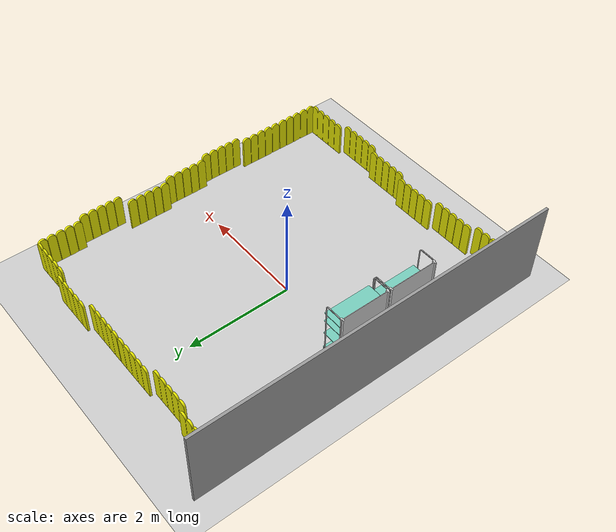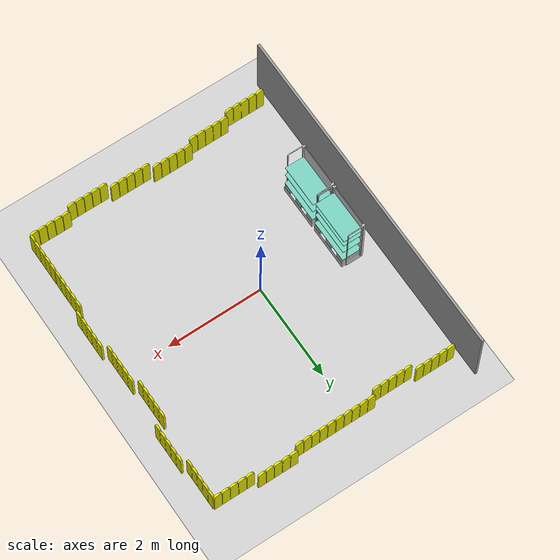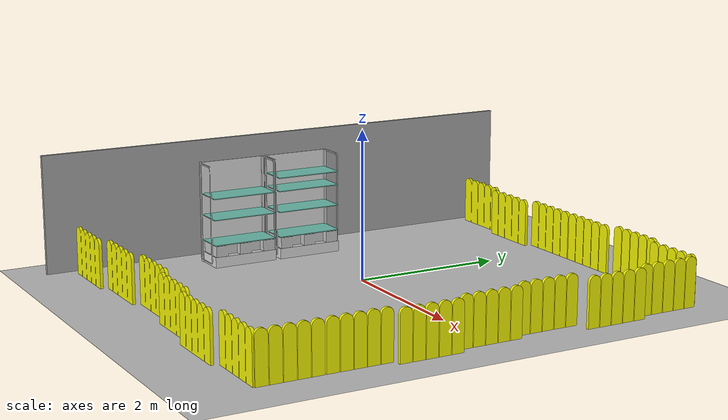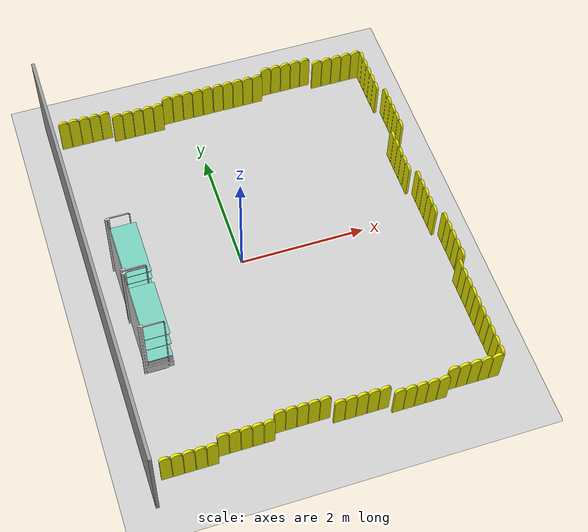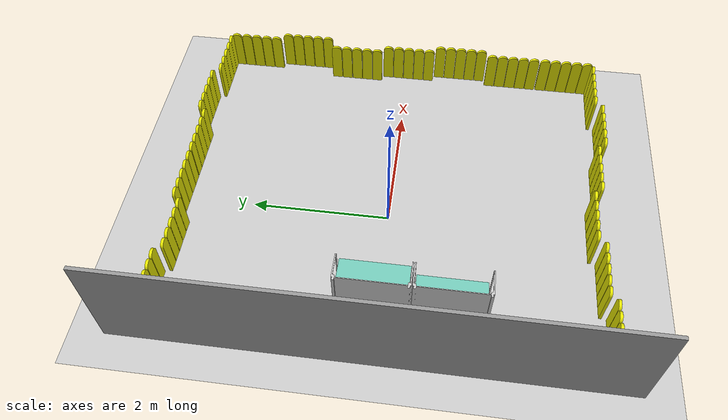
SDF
<?xml version="1.0" ?>
<sdf version="1.4">
  <!-- We use a custom world for the rrbot so that the camera angle is launched correctly -->

  <world name="default">
    <include>
      <uri>model://ground_plane</uri>
    </include>

    <!-- Global light source -->
    <include>
      <uri>model://sun</uri>
    </include>

    <!-- Focus camera on tall pendulum -->
    <gui fullscreen='0'>
      <camera name='user_camera'>
        <pose>7.1 -3.8 5.2 0 0.59 2.7</pose>
        <view_controller>orbit</view_controller>
      </camera>
    </gui>

    <include>
      <pose frame=''>-1.9 -0.97 0  0 0 0</pose>
      <uri>model://fcsc_shelf</uri>
    </include>

    <include>
      <pose frame=''>-1.9 0 0   0 0 0</pose>
      <uri>model://fcsc_shelf2</uri>
    </include>

    <!-- side fences -->
    <include>
      <pose frame=''>-1.72 -3.1 0  0 0 1.570796326795</pose>
      <uri>model://puppy_fence</uri>
    </include>
    <include>
      <pose frame=''>-0.86 -3.0 0  0 0 1.570796326795</pose>
      <uri>model://puppy_fence</uri>
    </include>
    <include>
      <pose frame=''>0 -2.9 0  0 0 1.570796326795</pose>
      <uri>model://puppy_fence</uri>
    </include>
    <include>
      <pose frame=''>0.86 -3.0 0  0 0 1.570796326795</pose>
      <uri>model://puppy_fence</uri>
    </include>
    <include>
      <pose frame=''>1.72 -3.1 0  0 0 1.570796326795</pose>
      <uri>model://puppy_fence</uri>
    </include>
    <include>
      <pose frame=''>2.58 -3.0 0  0 0 1.570796326795</pose>
      <uri>model://puppy_fence</uri>
    </include>

    <!-- side fences -->
    <include>
      <pose frame=''>-1.72 3.0 0  0 0 -1.570796326795</pose>
      <uri>model://puppy_fence</uri>
    </include>
    <include>
      <pose frame=''>-0.86 2.9 0  0 0 -1.570796326795</pose>
      <uri>model://puppy_fence</uri>
    </include>
    <include>
      <pose frame=''>0    3.0 0  0 0 -1.570796326795</pose>
      <uri>model://puppy_fence</uri>
    </include>
    <include>
      <pose frame=''>0.86 3.0 0  0 0 -1.570796326795</pose>
      <uri>model://puppy_fence</uri>
    </include>
    <include>
      <pose frame=''>1.72 3.1 0  0 0 -1.570796326795</pose>
      <uri>model://puppy_fence</uri>
    </include>
    <include>
      <pose frame=''>2.58 3.0 0  0 0 -1.570796326795</pose>
      <uri>model://puppy_fence</uri>
    </include>

    <include>
      <pose frame=''>3 2.58 0  0 0 0</pose>
      <uri>model://puppy_fence</uri>
    </include>
    <include>
      <pose frame=''>3.1 1.72 0  0 0 0</pose>
      <uri>model://puppy_fence</uri>
    </include>
    <include>
      <pose frame=''>2.9 0.86 0  0 0 0</pose>
      <uri>model://puppy_fence</uri>
    </include>
    <include>
      <pose frame=''>3 0 0  0 0 0</pose>
      <uri>model://puppy_fence</uri>
    </include>
    <include>
      <pose frame=''>3.1 -0.86 0  0 0 0</pose>
      <uri>model://puppy_fence</uri>
    </include>
    <include>
      <pose frame=''>3 -1.72 0  0 0 0</pose>
      <uri>model://puppy_fence</uri>
    </include>
    <include>
      <pose frame=''>3 -2.58 0  0 0 0</pose>
      <uri>model://puppy_fence</uri>
    </include>

    <!-- front wall -->
    <model name='wall_0'>
      <link name='base'>
        <pose frame=''>-2.3 0 0.8 0 -0 0</pose>
        <inertial>
          <mass>1</mass>
          <inertia>
            <ixx>0.166667</ixx>
            <ixy>0</ixy>
            <ixz>0</ixz>
            <iyy>0.166667</iyy>
            <iyz>0</iyz>
            <izz>0.166667</izz>
          </inertia>
          <pose frame=''>0 0 0 0 -0 0</pose>
        </inertial>

        <visual name='visual'>
          <pose frame=''>0 0 0 0 -0 0</pose>
          <geometry>
            <box>
              <size>0.05 7 1.6</size>
            </box>
          </geometry>
          <material>
            <script>
              <name>Gazebo/Grey</name>
              <uri>file://media/materials/scripts/gazebo.material</uri>
            </script>
            <ambient>0.3 0.3 0.3 1</ambient>
            <diffuse>0.7 0.7 0.7 1</diffuse>
            <specular>0.01 0.01 0.01 1</specular>
            <emissive>0 0 0 1</emissive>
          </material>

          <cast_shadows>1</cast_shadows>
          <transparency>0</transparency>
        </visual>

        <collision name='collision'>
          <laser_retro>0</laser_retro>
          <max_contacts>10</max_contacts>
          <pose frame=''>0 0 0 0 -0 0</pose>
          <geometry>
            <box>
              <size>0.05 7 1.6</size>
            </box>
          </geometry>
        </collision>

        <self_collide>0</self_collide>
        <kinematic>0</kinematic>
        <gravity>1</gravity>
      </link>
      <static>1</static>
    </model>
  </world>
</sdf>

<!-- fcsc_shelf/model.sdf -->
<sdf version="1.3">
  <model name="fcsc_shelf">
    <static>true</static>

    <link name="base">
      <visual name="visual">
        <geometry>
          <mesh>
            <uri>model://fcsc_shelf/meshes/shelf_base.dae</uri>
          </mesh>
        </geometry>
      </visual>
      <collision name="simple_collision">
        <geometry>
          <mesh>
            <uri>model://fcsc_shelf/meshes/shelf_base.dae</uri>
          </mesh>
        </geometry>
      </collision>
    </link>

    <link name="box">
      <visual name="visual">
        <geometry>
          <mesh>
            <uri>model://fcsc_shelf/meshes/shelf_box.dae</uri>
          </mesh>
        </geometry>
      </visual>
      <collision name="simple_collision">
        <geometry>
          <mesh>
            <uri>model://fcsc_shelf/meshes/shelf_box.dae</uri>
          </mesh>
        </geometry>
      </collision>
    </link>

    <link name="board_org">
      <pose>0 0 0.31  0 0 0</pose>
      <visual name="visual">
        <geometry>
          <mesh>
            <uri>model://fcsc_shelf/meshes/shelf_board.dae</uri>
          </mesh>
        </geometry>
      </visual>
      <collision name="simple_collision">
        <geometry>
          <mesh>
            <uri>model://fcsc_shelf/meshes/shelf_board.dae</uri>
          </mesh>
        </geometry>
      </collision>
    </link>

    <link name="board0">
      <pose>0 0 0.66  0 0 0</pose>
      <visual name="visual">
        <geometry>
          <mesh>
            <uri>model://fcsc_shelf/meshes/shelf_board.dae</uri>
          </mesh>
        </geometry>
      </visual>
      <collision name="simple_collision">
        <geometry>
          <mesh>
            <uri>model://fcsc_shelf/meshes/shelf_board.dae</uri>
          </mesh>
        </geometry>
      </collision>
    </link>

    <link name="board1">
      <pose>0 0 0.95  0 0 0</pose>
      <visual name="visual">
        <geometry>
          <mesh>
            <uri>model://fcsc_shelf/meshes/shelf_board.dae</uri>
          </mesh>
        </geometry>
      </visual>
      <collision name="simple_collision">
        <geometry>
          <mesh>
            <uri>model://fcsc_shelf/meshes/shelf_board.dae</uri>
          </mesh>
        </geometry>
      </collision>
    </link>

  </model>
</sdf>

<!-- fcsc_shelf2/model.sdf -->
<sdf version="1.3">
  <model name="fcsc_shelf">
    <static>true</static>

    <link name="base">
      <visual name="visual">
        <geometry>
          <mesh>
            <uri>model://fcsc_shelf/meshes/shelf_base.dae</uri>
          </mesh>
        </geometry>
      </visual>
      <collision name="simple_collision">
        <geometry>
          <mesh>
            <uri>model://fcsc_shelf/meshes/shelf_base.dae</uri>
          </mesh>
        </geometry>
      </collision>
    </link>

    <link name="box">
      <visual name="visual">
        <geometry>
          <mesh>
            <uri>model://fcsc_shelf/meshes/shelf_box.dae</uri>
          </mesh>
        </geometry>
      </visual>
      <collision name="simple_collision">
        <geometry>
          <mesh>
            <uri>model://fcsc_shelf/meshes/shelf_box.dae</uri>
          </mesh>
        </geometry>
      </collision>
    </link>

    <link name="board_org">
      <pose>0 0 0.31  0 0 0</pose>
      <visual name="visual">
        <geometry>
          <mesh>
            <uri>model://fcsc_shelf/meshes/shelf_board.dae</uri>
          </mesh>
        </geometry>
      </visual>
      <collision name="simple_collision">
        <geometry>
          <mesh>
            <uri>model://fcsc_shelf/meshes/shelf_board.dae</uri>
          </mesh>
        </geometry>
      </collision>
    </link>

    <link name="board0">
      <pose>0 0 0.66  0 0 0</pose>
      <visual name="visual">
        <geometry>
          <mesh>
            <uri>model://fcsc_shelf/meshes/shelf_board.dae</uri>
          </mesh>
        </geometry>
      </visual>
      <collision name="simple_collision">
        <geometry>
          <mesh>
            <uri>model://fcsc_shelf/meshes/shelf_board.dae</uri>
          </mesh>
        </geometry>
      </collision>
    </link>

    <link name="board1">
      <pose>0 0 0.95  0 0 0</pose>
      <visual name="visual">
        <geometry>
          <mesh>
            <uri>model://fcsc_shelf/meshes/shelf_board.dae</uri>
          </mesh>
        </geometry>
      </visual>
      <collision name="simple_collision">
        <geometry>
          <mesh>
            <uri>model://fcsc_shelf/meshes/shelf_board.dae</uri>
          </mesh>
        </geometry>
      </collision>
    </link>

    <link name="board2">
      <pose>0 0 1.135  0 0 0</pose>
      <visual name="visual">
        <geometry>
          <mesh>
            <uri>model://fcsc_shelf/meshes/shelf_board.dae</uri>
          </mesh>
        </geometry>
      </visual>
      <collision name="simple_collision">
        <geometry>
          <mesh>
            <uri>model://fcsc_shelf/meshes/shelf_board.dae</uri>
          </mesh>
        </geometry>
      </collision>
    </link>
  </model>
</sdf>

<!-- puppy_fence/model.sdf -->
<sdf version="1.5">
  <model name="puppy_fence">
    <static>true</static>
    <link name="link">
      <visual name="visual">
        <geometry>
          <mesh>
            <uri>model://puppy_fence/meshes/fence.dae</uri>
          </mesh>
        </geometry>
      </visual>
      <collision name="simple_collision">
        <geometry>
          <mesh>
            <uri>model://puppy_fence/meshes/fence.dae</uri>
          </mesh>
        </geometry>
      </collision>
    </link>
  </model>
</sdf>
